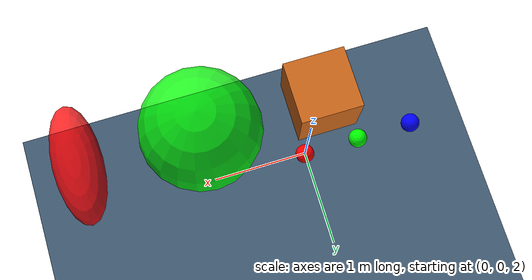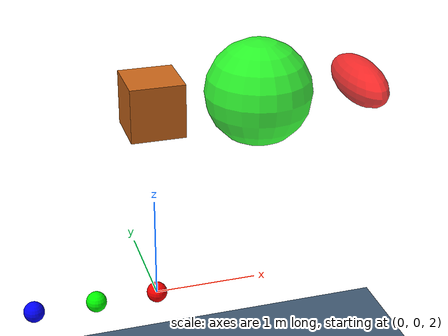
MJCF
<mujoco model="demo">
  <compiler angle="degree" coordinate="local"/>

  <!-- Gravity is enabled by default -->
  <option gravity="0 0 0" timestep="0.002">
    <flag warmstart="enable"/>
  </option>

  <!-- Visual settings -->
  <visual>
    <headlight ambient="0.5 0.5 0.5" diffuse="0.8 0.8 0.8"/>
    <rgba haze="0.15 0.25 0.35 1"/>  <!-- Haze for depth perception -->
    <global azimuth="10" elevation="-40"/>
  </visual>

  <!-- Assets: materials and textures -->
  <asset>
    <texture type="skybox" builtin="gradient" rgb1="0.3 0.5 0.7" rgb2="0 0 0" width="512" height="512"/>
    <texture name="grid" type="2d" builtin="checker" rgb1="0.2 0.3 0.4" rgb2="0.3 0.4 0.5" width="512" height="512"/>
    <material name="grid" texture="grid" texrepeat="1 1" texuniform="true" reflectance="0.2"/>
    <material name="robot" rgba="0.7 0.3 0.3 1"/>
    <material name="object" rgba="0.3 0.7 0.3 1"/>
  </asset>

  <!-- World body -->
  <worldbody>
    <!-- Floor -->
    <geom name="floor" type="plane" size="5 5 0.1" material="grid"/>

    <!-- Lighting -->
    <light pos="0 0 3" dir="0 0 -1" directional="true"/>

    <!-- Static objects -->
    <body name="static_box" pos="0 0 4">
      <geom name="box" type="box" size="0.25 0.25 0.25" rgba="0.8 0.4 0.1 1" mass="0.2"/>
    </body>

    <!-- Free-falling objects -->
    <!-- TODO -->
    <body name="sphere_1" pos="1 0 4">
      <geom name="sphere" type="sphere" size="0.5" rgba="0 255 0 0.8" mass="0.4"/>
      <freejoint/>
    </body>

    <body name="ellipsoid_1" pos="2 0 4">
      <geom name="ellipsoid" type="ellipsoid" size="0.2 0.5 0.2" rgba="255 0 0 0.8" mass="0.6"/>
      <freejoint/>
    </body>

    <!-- Simple 2-link robot arm -->
    <!-- TODO -->
    <body name="sphere1" pos="0 0 2">
      <geom type="sphere" size="0.1" rgba="1 0 0 1"/>

      <body name="sphere2" pos="-0.6 0 0">
        <joint name="joint1" type="ball" pos="0.6 0 0"/>
        <geom type="sphere" size="0.1" rgba="0 1 0 1" mass="0.2"/>

        <body name="sphere3" pos="-0.6 0 0">
          <joint name="joint2" type="ball" pos="0.3 0 0"/>
          <geom type="sphere" size="0.1" rgba="0 0 1 1" mass="0.2"/>
        </body>

      </body>

    </body>

  </worldbody>

</mujoco>
